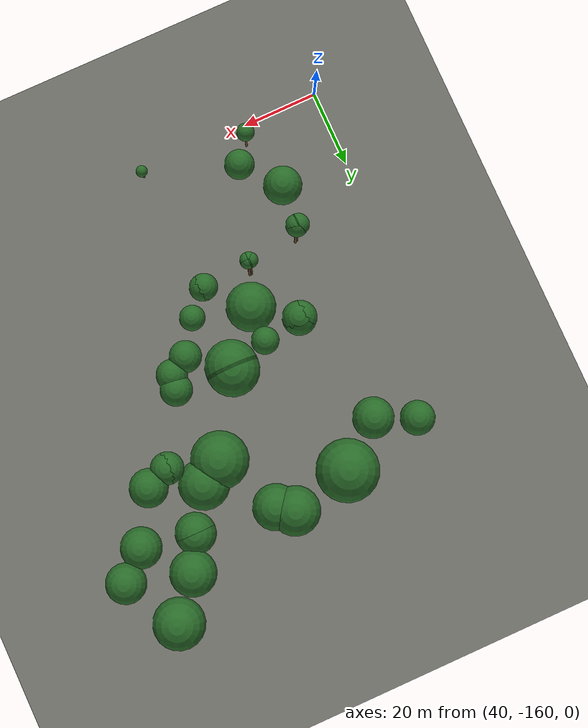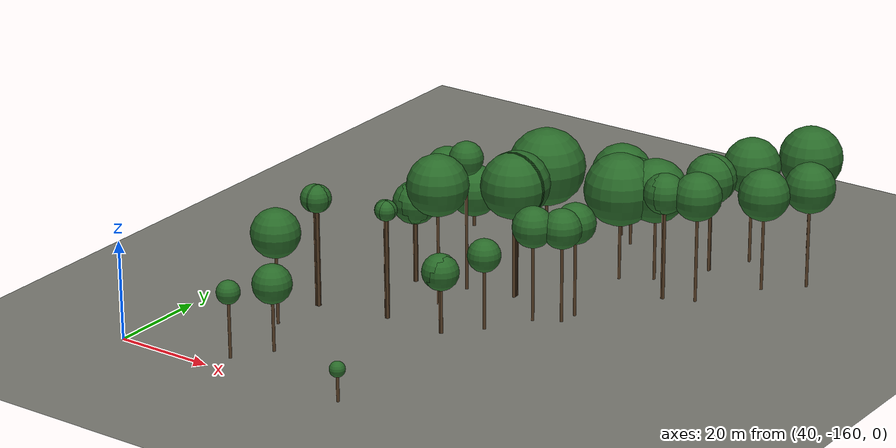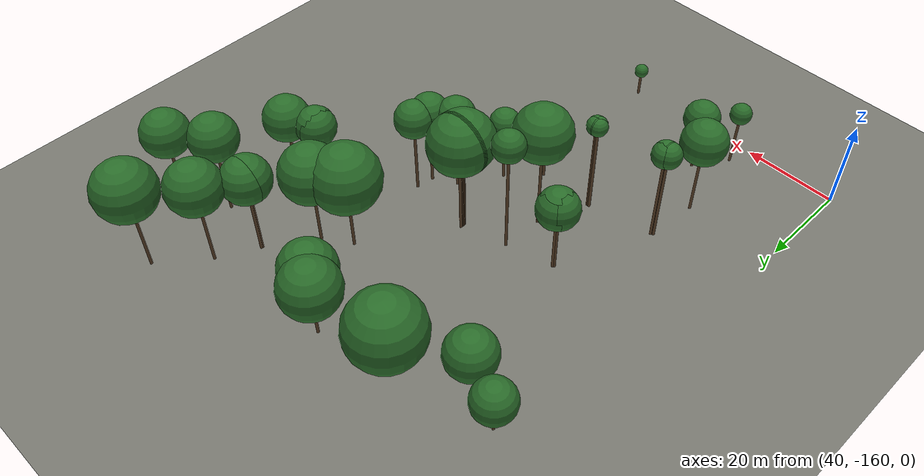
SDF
<sdf version="1.9">
 <world name="uav_arena_bk">
  <model name="ground_plane">
   <static>true</static>
   <link name="link">
    <collision name="collision">
     <geometry><plane><normal>0 0 1</normal><size>1200 1200</size></plane></geometry>
    </collision>
    <visual name="visual">
     <geometry><plane><normal>0 0 1</normal><size>1200 1200</size></plane></geometry>
     <material><ambient>0.35 0.35 0.33 1</ambient><diffuse>0.45 0.45 0.42 1</diffuse></material>
    </visual>
   </link>
  </model>
  <model name="tree_228">
   <static>true</static>
   <pose>125.318 -51.296 0 0 0 0</pose>
   <link name="link">
    <collision name="trunk_collision">
     <pose>0 0 7.155 0 0 0</pose>
     <geometry><cylinder><radius>0.30</radius><length>14.310</length></cylinder></geometry>
    </collision>
    <visual name="trunk_visual">
     <pose>0 0 7.155 0 0 0</pose>
     <geometry><cylinder><radius>0.30</radius><length>14.310</length></cylinder></geometry>
     <material><ambient>0.25 0.18 0.11 1</ambient><diffuse>0.35 0.25 0.15 1</diffuse></material>
    </visual>
    <collision name="canopy_collision">
     <pose>0 0 20.720 0 0 0</pose>
     <geometry><sphere><radius>6.410</radius></sphere></geometry>
    </collision>
    <visual name="canopy_visual">
     <pose>0 0 20.720 0 0 0</pose>
     <geometry><sphere><radius>6.410</radius></sphere></geometry>
     <material><ambient>0.10 0.28 0.10 1</ambient><diffuse>0.16 0.42 0.16 1</diffuse></material>
     <plugin filename="gz-sim-label-system" name="gz::sim::systems::Label"><label>2</label></plugin>
    </visual>
   </link>
  </model>
  <model name="tree_242">
   <static>true</static>
   <pose>117.517 -60.754 0 0 0 0</pose>
   <link name="link">
    <collision name="trunk_collision">
     <pose>0 0 7.265 0 0 0</pose>
     <geometry><cylinder><radius>0.30</radius><length>14.530</length></cylinder></geometry>
    </collision>
    <visual name="trunk_visual">
     <pose>0 0 7.265 0 0 0</pose>
     <geometry><cylinder><radius>0.30</radius><length>14.530</length></cylinder></geometry>
     <material><ambient>0.25 0.18 0.11 1</ambient><diffuse>0.35 0.25 0.15 1</diffuse></material>
    </visual>
    <collision name="canopy_collision">
     <pose>0 0 20.280 0 0 0</pose>
     <geometry><sphere><radius>5.750</radius></sphere></geometry>
    </collision>
    <visual name="canopy_visual">
     <pose>0 0 20.280 0 0 0</pose>
     <geometry><sphere><radius>5.750</radius></sphere></geometry>
     <material><ambient>0.10 0.28 0.10 1</ambient><diffuse>0.16 0.42 0.16 1</diffuse></material>
     <plugin filename="gz-sim-label-system" name="gz::sim::systems::Label"><label>2</label></plugin>
    </visual>
   </link>
  </model>
  <model name="tree_247">
   <static>true</static>
   <pose>89.250 -63.851 0 0 0 0</pose>
   <link name="link">
    <collision name="trunk_collision">
     <pose>0 0 3.500 0 0 0</pose>
     <geometry><cylinder><radius>0.30</radius><length>7.000</length></cylinder></geometry>
    </collision>
    <visual name="trunk_visual">
     <pose>0 0 3.500 0 0 0</pose>
     <geometry><cylinder><radius>0.30</radius><length>7.000</length></cylinder></geometry>
     <material><ambient>0.25 0.18 0.11 1</ambient><diffuse>0.35 0.25 0.15 1</diffuse></material>
    </visual>
    <collision name="canopy_collision">
     <pose>0 0 13.260 0 0 0</pose>
     <geometry><sphere><radius>6.260</radius></sphere></geometry>
    </collision>
    <visual name="canopy_visual">
     <pose>0 0 13.260 0 0 0</pose>
     <geometry><sphere><radius>6.260</radius></sphere></geometry>
     <material><ambient>0.10 0.28 0.10 1</ambient><diffuse>0.16 0.42 0.16 1</diffuse></material>
     <plugin filename="gz-sim-label-system" name="gz::sim::systems::Label"><label>2</label></plugin>
    </visual>
   </link>
  </model>
  <model name="tree_249">
   <static>true</static>
   <pose>132.993 -65.088 0 0 0 0</pose>
   <link name="link">
    <collision name="trunk_collision">
     <pose>0 0 7.835 0 0 0</pose>
     <geometry><cylinder><radius>0.30</radius><length>15.670</length></cylinder></geometry>
    </collision>
    <visual name="trunk_visual">
     <pose>0 0 7.835 0 0 0</pose>
     <geometry><cylinder><radius>0.30</radius><length>15.670</length></cylinder></geometry>
     <material><ambient>0.25 0.18 0.11 1</ambient><diffuse>0.35 0.25 0.15 1</diffuse></material>
    </visual>
    <collision name="canopy_collision">
     <pose>0 0 20.680 0 0 0</pose>
     <geometry><sphere><radius>5.010</radius></sphere></geometry>
    </collision>
    <visual name="canopy_visual">
     <pose>0 0 20.680 0 0 0</pose>
     <geometry><sphere><radius>5.010</radius></sphere></geometry>
     <material><ambient>0.10 0.28 0.10 1</ambient><diffuse>0.16 0.42 0.16 1</diffuse></material>
     <plugin filename="gz-sim-label-system" name="gz::sim::systems::Label"><label>2</label></plugin>
    </visual>
   </link>
  </model>
  <model name="tree_251">
   <static>true</static>
   <pose>93.235 -66.622 0 0 0 0</pose>
   <link name="link">
    <collision name="trunk_collision">
     <pose>0 0 3.460 0 0 0</pose>
     <geometry><cylinder><radius>0.30</radius><length>6.920</length></cylinder></geometry>
    </collision>
    <visual name="trunk_visual">
     <pose>0 0 3.460 0 0 0</pose>
     <geometry><cylinder><radius>0.30</radius><length>6.920</length></cylinder></geometry>
     <material><ambient>0.25 0.18 0.11 1</ambient><diffuse>0.35 0.25 0.15 1</diffuse></material>
    </visual>
    <collision name="canopy_collision">
     <pose>0 0 12.780 0 0 0</pose>
     <geometry><sphere><radius>5.860</radius></sphere></geometry>
    </collision>
    <visual name="canopy_visual">
     <pose>0 0 12.780 0 0 0</pose>
     <geometry><sphere><radius>5.860</radius></sphere></geometry>
     <material><ambient>0.10 0.28 0.10 1</ambient><diffuse>0.16 0.42 0.16 1</diffuse></material>
     <plugin filename="gz-sim-label-system" name="gz::sim::systems::Label"><label>2</label></plugin>
    </visual>
   </link>
  </model>
  <model name="tree_252">
   <static>true</static>
   <pose>73.480 -67.515 0 0 0 0</pose>
   <link name="link">
    <collision name="trunk_collision">
     <pose>0 0 2.265 0 0 0</pose>
     <geometry><cylinder><radius>0.30</radius><length>4.530</length></cylinder></geometry>
    </collision>
    <visual name="trunk_visual">
     <pose>0 0 2.265 0 0 0</pose>
     <geometry><cylinder><radius>0.30</radius><length>4.530</length></cylinder></geometry>
     <material><ambient>0.25 0.18 0.11 1</ambient><diffuse>0.35 0.25 0.15 1</diffuse></material>
    </visual>
    <collision name="canopy_collision">
     <pose>0 0 12.530 0 0 0</pose>
     <geometry><sphere><radius>8.000</radius></sphere></geometry>
    </collision>
    <visual name="canopy_visual">
     <pose>0 0 12.530 0 0 0</pose>
     <geometry><sphere><radius>8.000</radius></sphere></geometry>
     <material><ambient>0.10 0.28 0.10 1</ambient><diffuse>0.16 0.42 0.16 1</diffuse></material>
     <plugin filename="gz-sim-label-system" name="gz::sim::systems::Label"><label>2</label></plugin>
    </visual>
   </link>
  </model>
  <model name="tree_254">
   <static>true</static>
   <pose>113.222 -68.981 0 0 0 0</pose>
   <link name="link">
    <collision name="trunk_collision">
     <pose>0 0 7.195 0 0 0</pose>
     <geometry><cylinder><radius>0.30</radius><length>14.390</length></cylinder></geometry>
    </collision>
    <visual name="trunk_visual">
     <pose>0 0 7.195 0 0 0</pose>
     <geometry><cylinder><radius>0.30</radius><length>14.390</length></cylinder></geometry>
     <material><ambient>0.25 0.18 0.11 1</ambient><diffuse>0.35 0.25 0.15 1</diffuse></material>
    </visual>
    <collision name="canopy_collision">
     <pose>0 0 19.390 0 0 0</pose>
     <geometry><sphere><radius>5.000</radius></sphere></geometry>
    </collision>
    <visual name="canopy_visual">
     <pose>0 0 19.390 0 0 0</pose>
     <geometry><sphere><radius>5.000</radius></sphere></geometry>
     <material><ambient>0.10 0.28 0.10 1</ambient><diffuse>0.16 0.42 0.16 1</diffuse></material>
     <plugin filename="gz-sim-label-system" name="gz::sim::systems::Label"><label>2</label></plugin>
    </visual>
   </link>
  </model>
  <model name="tree_255">
   <static>true</static>
   <pose>113.221 -69.231 0 0 0 0</pose>
   <link name="link">
    <collision name="trunk_collision">
     <pose>0 0 7.195 0 0 0</pose>
     <geometry><cylinder><radius>0.30</radius><length>14.390</length></cylinder></geometry>
    </collision>
    <visual name="trunk_visual">
     <pose>0 0 7.195 0 0 0</pose>
     <geometry><cylinder><radius>0.30</radius><length>14.390</length></cylinder></geometry>
     <material><ambient>0.25 0.18 0.11 1</ambient><diffuse>0.35 0.25 0.15 1</diffuse></material>
    </visual>
    <collision name="canopy_collision">
     <pose>0 0 19.390 0 0 0</pose>
     <geometry><sphere><radius>5.000</radius></sphere></geometry>
    </collision>
    <visual name="canopy_visual">
     <pose>0 0 19.390 0 0 0</pose>
     <geometry><sphere><radius>5.000</radius></sphere></geometry>
     <material><ambient>0.10 0.28 0.10 1</ambient><diffuse>0.16 0.42 0.16 1</diffuse></material>
     <plugin filename="gz-sim-label-system" name="gz::sim::systems::Label"><label>2</label></plugin>
    </visual>
   </link>
  </model>
  <model name="tree_257">
   <static>true</static>
   <pose>126.460 -71.302 0 0 0 0</pose>
   <link name="link">
    <collision name="trunk_collision">
     <pose>0 0 7.320 0 0 0</pose>
     <geometry><cylinder><radius>0.30</radius><length>14.640</length></cylinder></geometry>
    </collision>
    <visual name="trunk_visual">
     <pose>0 0 7.320 0 0 0</pose>
     <geometry><cylinder><radius>0.30</radius><length>14.640</length></cylinder></geometry>
     <material><ambient>0.25 0.18 0.11 1</ambient><diffuse>0.35 0.25 0.15 1</diffuse></material>
    </visual>
    <collision name="canopy_collision">
     <pose>0 0 19.740 0 0 0</pose>
     <geometry><sphere><radius>5.100</radius></sphere></geometry>
    </collision>
    <visual name="canopy_visual">
     <pose>0 0 19.740 0 0 0</pose>
     <geometry><sphere><radius>5.100</radius></sphere></geometry>
     <material><ambient>0.10 0.28 0.10 1</ambient><diffuse>0.16 0.42 0.16 1</diffuse></material>
     <plugin filename="gz-sim-label-system" name="gz::sim::systems::Label"><label>2</label></plugin>
    </visual>
   </link>
  </model>
  <model name="tree_258">
   <static>true</static>
   <pose>51.955 -72.149 0 0 0 0</pose>
   <link name="link">
    <collision name="trunk_collision">
     <pose>0 0 2.265 0 0 0</pose>
     <geometry><cylinder><radius>0.30</radius><length>4.530</length></cylinder></geometry>
    </collision>
    <visual name="trunk_visual">
     <pose>0 0 2.265 0 0 0</pose>
     <geometry><cylinder><radius>0.30</radius><length>4.530</length></cylinder></geometry>
     <material><ambient>0.25 0.18 0.11 1</ambient><diffuse>0.35 0.25 0.15 1</diffuse></material>
    </visual>
    <collision name="canopy_collision">
     <pose>0 0 8.980 0 0 0</pose>
     <geometry><sphere><radius>4.450</radius></sphere></geometry>
    </collision>
    <visual name="canopy_visual">
     <pose>0 0 8.980 0 0 0</pose>
     <geometry><sphere><radius>4.450</radius></sphere></geometry>
     <material><ambient>0.10 0.28 0.10 1</ambient><diffuse>0.16 0.42 0.16 1</diffuse></material>
     <plugin filename="gz-sim-label-system" name="gz::sim::systems::Label"><label>2</label></plugin>
    </visual>
   </link>
  </model>
  <model name="tree_264">
   <static>true</static>
   <pose>61.930 -76.703 0 0 0 0</pose>
   <link name="link">
    <collision name="trunk_collision">
     <pose>0 0 1.220 0 0 0</pose>
     <geometry><cylinder><radius>0.30</radius><length>2.440</length></cylinder></geometry>
    </collision>
    <visual name="trunk_visual">
     <pose>0 0 1.220 0 0 0</pose>
     <geometry><cylinder><radius>0.30</radius><length>2.440</length></cylinder></geometry>
     <material><ambient>0.25 0.18 0.11 1</ambient><diffuse>0.35 0.25 0.15 1</diffuse></material>
    </visual>
    <collision name="canopy_collision">
     <pose>0 0 7.760 0 0 0</pose>
     <geometry><sphere><radius>5.320</radius></sphere></geometry>
    </collision>
    <visual name="canopy_visual">
     <pose>0 0 7.760 0 0 0</pose>
     <geometry><sphere><radius>5.320</radius></sphere></geometry>
     <material><ambient>0.10 0.28 0.10 1</ambient><diffuse>0.16 0.42 0.16 1</diffuse></material>
     <plugin filename="gz-sim-label-system" name="gz::sim::systems::Label"><label>2</label></plugin>
    </visual>
   </link>
  </model>
  <model name="tree_267">
   <static>true</static>
   <pose>106.668 -78.945 0 0 0 0</pose>
   <link name="link">
    <collision name="trunk_collision">
     <pose>0 0 6.165 0 0 0</pose>
     <geometry><cylinder><radius>0.30</radius><length>12.330</length></cylinder></geometry>
    </collision>
    <visual name="trunk_visual">
     <pose>0 0 6.165 0 0 0</pose>
     <geometry><cylinder><radius>0.30</radius><length>12.330</length></cylinder></geometry>
     <material><ambient>0.25 0.18 0.11 1</ambient><diffuse>0.35 0.25 0.15 1</diffuse></material>
    </visual>
    <collision name="canopy_collision">
     <pose>0 0 18.650 0 0 0</pose>
     <geometry><sphere><radius>6.320</radius></sphere></geometry>
    </collision>
    <visual name="canopy_visual">
     <pose>0 0 18.650 0 0 0</pose>
     <geometry><sphere><radius>6.320</radius></sphere></geometry>
     <material><ambient>0.10 0.28 0.10 1</ambient><diffuse>0.16 0.42 0.16 1</diffuse></material>
     <plugin filename="gz-sim-label-system" name="gz::sim::systems::Label"><label>2</label></plugin>
    </visual>
   </link>
  </model>
  <model name="tree_270">
   <static>true</static>
   <pose>100.898 -82.664 0 0 0 0</pose>
   <link name="link">
    <collision name="trunk_collision">
     <pose>0 0 5.815 0 0 0</pose>
     <geometry><cylinder><radius>0.30</radius><length>11.630</length></cylinder></geometry>
    </collision>
    <visual name="trunk_visual">
     <pose>0 0 5.815 0 0 0</pose>
     <geometry><cylinder><radius>0.30</radius><length>11.630</length></cylinder></geometry>
     <material><ambient>0.25 0.18 0.11 1</ambient><diffuse>0.35 0.25 0.15 1</diffuse></material>
    </visual>
    <collision name="canopy_collision">
     <pose>0 0 18.830 0 0 0</pose>
     <geometry><sphere><radius>7.200</radius></sphere></geometry>
    </collision>
    <visual name="canopy_visual">
     <pose>0 0 18.830 0 0 0</pose>
     <geometry><sphere><radius>7.200</radius></sphere></geometry>
     <material><ambient>0.10 0.28 0.10 1</ambient><diffuse>0.16 0.42 0.16 1</diffuse></material>
     <plugin filename="gz-sim-label-system" name="gz::sim::systems::Label"><label>2</label></plugin>
    </visual>
   </link>
  </model>
  <model name="tree_271">
   <static>true</static>
   <pose>118.893 -83.511 0 0 0 0</pose>
   <link name="link">
    <collision name="trunk_collision">
     <pose>0 0 8.475 0 0 0</pose>
     <geometry><cylinder><radius>0.30</radius><length>16.950</length></cylinder></geometry>
    </collision>
    <visual name="trunk_visual">
     <pose>0 0 8.475 0 0 0</pose>
     <geometry><cylinder><radius>0.30</radius><length>16.950</length></cylinder></geometry>
     <material><ambient>0.25 0.18 0.11 1</ambient><diffuse>0.35 0.25 0.15 1</diffuse></material>
    </visual>
    <collision name="canopy_collision">
     <pose>0 0 21.710 0 0 0</pose>
     <geometry><sphere><radius>4.760</radius></sphere></geometry>
    </collision>
    <visual name="canopy_visual">
     <pose>0 0 21.710 0 0 0</pose>
     <geometry><sphere><radius>4.760</radius></sphere></geometry>
     <material><ambient>0.10 0.28 0.10 1</ambient><diffuse>0.16 0.42 0.16 1</diffuse></material>
     <plugin filename="gz-sim-label-system" name="gz::sim::systems::Label"><label>2</label></plugin>
    </visual>
   </link>
  </model>
  <model name="tree_272">
   <static>true</static>
   <pose>112.880 -85.979 0 0 0 0</pose>
   <link name="link">
    <collision name="trunk_collision">
     <pose>0 0 8.890 0 0 0</pose>
     <geometry><cylinder><radius>0.30</radius><length>17.780</length></cylinder></geometry>
    </collision>
    <visual name="trunk_visual">
     <pose>0 0 8.890 0 0 0</pose>
     <geometry><cylinder><radius>0.30</radius><length>17.780</length></cylinder></geometry>
     <material><ambient>0.25 0.18 0.11 1</ambient><diffuse>0.35 0.25 0.15 1</diffuse></material>
    </visual>
    <collision name="canopy_collision">
     <pose>0 0 21.780 0 0 0</pose>
     <geometry><sphere><radius>4.000</radius></sphere></geometry>
    </collision>
    <visual name="canopy_visual">
     <pose>0 0 21.780 0 0 0</pose>
     <geometry><sphere><radius>4.000</radius></sphere></geometry>
     <material><ambient>0.10 0.28 0.10 1</ambient><diffuse>0.16 0.42 0.16 1</diffuse></material>
     <plugin filename="gz-sim-label-system" name="gz::sim::systems::Label"><label>2</label></plugin>
    </visual>
   </link>
  </model>
  <model name="tree_273">
   <static>true</static>
   <pose>113.130 -85.980 0 0 0 0</pose>
   <link name="link">
    <collision name="trunk_collision">
     <pose>0 0 8.920 0 0 0</pose>
     <geometry><cylinder><radius>0.30</radius><length>17.840</length></cylinder></geometry>
    </collision>
    <visual name="trunk_visual">
     <pose>0 0 8.920 0 0 0</pose>
     <geometry><cylinder><radius>0.30</radius><length>17.840</length></cylinder></geometry>
     <material><ambient>0.25 0.18 0.11 1</ambient><diffuse>0.35 0.25 0.15 1</diffuse></material>
    </visual>
    <collision name="canopy_collision">
     <pose>0 0 21.840 0 0 0</pose>
     <geometry><sphere><radius>4.000</radius></sphere></geometry>
    </collision>
    <visual name="canopy_visual">
     <pose>0 0 21.840 0 0 0</pose>
     <geometry><sphere><radius>4.000</radius></sphere></geometry>
     <material><ambient>0.10 0.28 0.10 1</ambient><diffuse>0.16 0.42 0.16 1</diffuse></material>
     <plugin filename="gz-sim-label-system" name="gz::sim::systems::Label"><label>2</label></plugin>
    </visual>
   </link>
  </model>
  <model name="tree_279">
   <static>true</static>
   <pose>89.049 -100.850 0 0 0 0</pose>
   <link name="link">
    <collision name="trunk_collision">
     <pose>0 0 8.355 0 0 0</pose>
     <geometry><cylinder><radius>0.30</radius><length>16.710</length></cylinder></geometry>
    </collision>
    <visual name="trunk_visual">
     <pose>0 0 8.355 0 0 0</pose>
     <geometry><cylinder><radius>0.30</radius><length>16.710</length></cylinder></geometry>
     <material><ambient>0.25 0.18 0.11 1</ambient><diffuse>0.35 0.25 0.15 1</diffuse></material>
    </visual>
    <collision name="canopy_collision">
     <pose>0 0 23.210 0 0 0</pose>
     <geometry><sphere><radius>6.500</radius></sphere></geometry>
    </collision>
    <visual name="canopy_visual">
     <pose>0 0 23.210 0 0 0</pose>
     <geometry><sphere><radius>6.500</radius></sphere></geometry>
     <material><ambient>0.10 0.28 0.10 1</ambient><diffuse>0.16 0.42 0.16 1</diffuse></material>
     <plugin filename="gz-sim-label-system" name="gz::sim::systems::Label"><label>2</label></plugin>
    </visual>
   </link>
  </model>
  <model name="tree_283">
   <static>true</static>
   <pose>89.048 -101.100 0 0 0 0</pose>
   <link name="link">
    <collision name="trunk_collision">
     <pose>0 0 8.355 0 0 0</pose>
     <geometry><cylinder><radius>0.30</radius><length>16.710</length></cylinder></geometry>
    </collision>
    <visual name="trunk_visual">
     <pose>0 0 8.355 0 0 0</pose>
     <geometry><cylinder><radius>0.30</radius><length>16.710</length></cylinder></geometry>
     <material><ambient>0.25 0.18 0.11 1</ambient><diffuse>0.35 0.25 0.15 1</diffuse></material>
    </visual>
    <collision name="canopy_collision">
     <pose>0 0 23.210 0 0 0</pose>
     <geometry><sphere><radius>6.500</radius></sphere></geometry>
    </collision>
    <visual name="canopy_visual">
     <pose>0 0 23.210 0 0 0</pose>
     <geometry><sphere><radius>6.500</radius></sphere></geometry>
     <material><ambient>0.10 0.28 0.10 1</ambient><diffuse>0.16 0.42 0.16 1</diffuse></material>
     <plugin filename="gz-sim-label-system" name="gz::sim::systems::Label"><label>2</label></plugin>
    </visual>
   </link>
  </model>
  <model name="tree_284">
   <static>true</static>
   <pose>89.047 -101.350 0 0 0 0</pose>
   <link name="link">
    <collision name="trunk_collision">
     <pose>0 0 8.355 0 0 0</pose>
     <geometry><cylinder><radius>0.30</radius><length>16.710</length></cylinder></geometry>
    </collision>
    <visual name="trunk_visual">
     <pose>0 0 8.355 0 0 0</pose>
     <geometry><cylinder><radius>0.30</radius><length>16.710</length></cylinder></geometry>
     <material><ambient>0.25 0.18 0.11 1</ambient><diffuse>0.35 0.25 0.15 1</diffuse></material>
    </visual>
    <collision name="canopy_collision">
     <pose>0 0 23.210 0 0 0</pose>
     <geometry><sphere><radius>6.500</radius></sphere></geometry>
    </collision>
    <visual name="canopy_visual">
     <pose>0 0 23.210 0 0 0</pose>
     <geometry><sphere><radius>6.500</radius></sphere></geometry>
     <material><ambient>0.10 0.28 0.10 1</ambient><diffuse>0.16 0.42 0.16 1</diffuse></material>
     <plugin filename="gz-sim-label-system" name="gz::sim::systems::Label"><label>2</label></plugin>
    </visual>
   </link>
  </model>
  <model name="tree_285">
   <static>true</static>
   <pose>89.045 -101.600 0 0 0 0</pose>
   <link name="link">
    <collision name="trunk_collision">
     <pose>0 0 8.355 0 0 0</pose>
     <geometry><cylinder><radius>0.30</radius><length>16.710</length></cylinder></geometry>
    </collision>
    <visual name="trunk_visual">
     <pose>0 0 8.355 0 0 0</pose>
     <geometry><cylinder><radius>0.30</radius><length>16.710</length></cylinder></geometry>
     <material><ambient>0.25 0.18 0.11 1</ambient><diffuse>0.35 0.25 0.15 1</diffuse></material>
    </visual>
    <collision name="canopy_collision">
     <pose>0 0 23.210 0 0 0</pose>
     <geometry><sphere><radius>6.500</radius></sphere></geometry>
    </collision>
    <visual name="canopy_visual">
     <pose>0 0 23.210 0 0 0</pose>
     <geometry><sphere><radius>6.500</radius></sphere></geometry>
     <material><ambient>0.10 0.28 0.10 1</ambient><diffuse>0.16 0.42 0.16 1</diffuse></material>
     <plugin filename="gz-sim-label-system" name="gz::sim::systems::Label"><label>2</label></plugin>
    </visual>
   </link>
  </model>
  <model name="tree_286">
   <static>true</static>
   <pose>89.044 -101.850 0 0 0 0</pose>
   <link name="link">
    <collision name="trunk_collision">
     <pose>0 0 8.355 0 0 0</pose>
     <geometry><cylinder><radius>0.30</radius><length>16.710</length></cylinder></geometry>
    </collision>
    <visual name="trunk_visual">
     <pose>0 0 8.355 0 0 0</pose>
     <geometry><cylinder><radius>0.30</radius><length>16.710</length></cylinder></geometry>
     <material><ambient>0.25 0.18 0.11 1</ambient><diffuse>0.35 0.25 0.15 1</diffuse></material>
    </visual>
    <collision name="canopy_collision">
     <pose>0 0 23.210 0 0 0</pose>
     <geometry><sphere><radius>6.500</radius></sphere></geometry>
    </collision>
    <visual name="canopy_visual">
     <pose>0 0 23.210 0 0 0</pose>
     <geometry><sphere><radius>6.500</radius></sphere></geometry>
     <material><ambient>0.10 0.28 0.10 1</ambient><diffuse>0.16 0.42 0.16 1</diffuse></material>
     <plugin filename="gz-sim-label-system" name="gz::sim::systems::Label"><label>2</label></plugin>
    </visual>
   </link>
  </model>
  <model name="tree_290">
   <static>true</static>
   <pose>103.541 -102.428 0 0 0 0</pose>
   <link name="link">
    <collision name="trunk_collision">
     <pose>0 0 7.490 0 0 0</pose>
     <geometry><cylinder><radius>0.30</radius><length>14.980</length></cylinder></geometry>
    </collision>
    <visual name="trunk_visual">
     <pose>0 0 7.490 0 0 0</pose>
     <geometry><cylinder><radius>0.30</radius><length>14.980</length></cylinder></geometry>
     <material><ambient>0.25 0.18 0.11 1</ambient><diffuse>0.35 0.25 0.15 1</diffuse></material>
    </visual>
    <collision name="canopy_collision">
     <pose>0 0 19.010 0 0 0</pose>
     <geometry><sphere><radius>4.030</radius></sphere></geometry>
    </collision>
    <visual name="canopy_visual">
     <pose>0 0 19.010 0 0 0</pose>
     <geometry><sphere><radius>4.030</radius></sphere></geometry>
     <material><ambient>0.10 0.28 0.10 1</ambient><diffuse>0.16 0.42 0.16 1</diffuse></material>
     <plugin filename="gz-sim-label-system" name="gz::sim::systems::Label"><label>2</label></plugin>
    </visual>
   </link>
  </model>
  <model name="tree_293">
   <static>true</static>
   <pose>79.283 -103.797 0 0 0 0</pose>
   <link name="link">
    <collision name="trunk_collision">
     <pose>0 0 11.940 0 0 0</pose>
     <geometry><cylinder><radius>0.30</radius><length>23.880</length></cylinder></geometry>
    </collision>
    <visual name="trunk_visual">
     <pose>0 0 11.940 0 0 0</pose>
     <geometry><cylinder><radius>0.30</radius><length>23.880</length></cylinder></geometry>
     <material><ambient>0.25 0.18 0.11 1</ambient><diffuse>0.35 0.25 0.15 1</diffuse></material>
    </visual>
    <collision name="canopy_collision">
     <pose>0 0 27.240 0 0 0</pose>
     <geometry><sphere><radius>3.360</radius></sphere></geometry>
    </collision>
    <visual name="canopy_visual">
     <pose>0 0 27.240 0 0 0</pose>
     <geometry><sphere><radius>3.360</radius></sphere></geometry>
     <material><ambient>0.10 0.28 0.10 1</ambient><diffuse>0.16 0.42 0.16 1</diffuse></material>
     <plugin filename="gz-sim-label-system" name="gz::sim::systems::Label"><label>2</label></plugin>
    </visual>
   </link>
  </model>
  <model name="tree_295">
   <static>true</static>
   <pose>103.021 -106.176 0 0 0 0</pose>
   <link name="link">
    <collision name="trunk_collision">
     <pose>0 0 7.580 0 0 0</pose>
     <geometry><cylinder><radius>0.30</radius><length>15.160</length></cylinder></geometry>
    </collision>
    <visual name="trunk_visual">
     <pose>0 0 7.580 0 0 0</pose>
     <geometry><cylinder><radius>0.30</radius><length>15.160</length></cylinder></geometry>
     <material><ambient>0.25 0.18 0.11 1</ambient><diffuse>0.35 0.25 0.15 1</diffuse></material>
    </visual>
    <collision name="canopy_collision">
     <pose>0 0 19.070 0 0 0</pose>
     <geometry><sphere><radius>3.910</radius></sphere></geometry>
    </collision>
    <visual name="canopy_visual">
     <pose>0 0 19.070 0 0 0</pose>
     <geometry><sphere><radius>3.910</radius></sphere></geometry>
     <material><ambient>0.10 0.28 0.10 1</ambient><diffuse>0.16 0.42 0.16 1</diffuse></material>
     <plugin filename="gz-sim-label-system" name="gz::sim::systems::Label"><label>2</label></plugin>
    </visual>
   </link>
  </model>
  <model name="tree_296">
   <static>true</static>
   <pose>69.020 -106.241 0 0 0 0</pose>
   <link name="link">
    <collision name="trunk_collision">
     <pose>0 0 6.160 0 0 0</pose>
     <geometry><cylinder><radius>0.30</radius><length>12.320</length></cylinder></geometry>
    </collision>
    <visual name="trunk_visual">
     <pose>0 0 6.160 0 0 0</pose>
     <geometry><cylinder><radius>0.30</radius><length>12.320</length></cylinder></geometry>
     <material><ambient>0.25 0.18 0.11 1</ambient><diffuse>0.35 0.25 0.15 1</diffuse></material>
    </visual>
    <collision name="canopy_collision">
     <pose>0 0 16.570 0 0 0</pose>
     <geometry><sphere><radius>4.250</radius></sphere></geometry>
    </collision>
    <visual name="canopy_visual">
     <pose>0 0 16.570 0 0 0</pose>
     <geometry><sphere><radius>4.250</radius></sphere></geometry>
     <material><ambient>0.10 0.28 0.10 1</ambient><diffuse>0.16 0.42 0.16 1</diffuse></material>
     <plugin filename="gz-sim-label-system" name="gz::sim::systems::Label"><label>2</label></plugin>
    </visual>
   </link>
  </model>
  <model name="tree_297">
   <static>true</static>
   <pose>68.769 -106.490 0 0 0 0</pose>
   <link name="link">
    <collision name="trunk_collision">
     <pose>0 0 6.180 0 0 0</pose>
     <geometry><cylinder><radius>0.30</radius><length>12.360</length></cylinder></geometry>
    </collision>
    <visual name="trunk_visual">
     <pose>0 0 6.180 0 0 0</pose>
     <geometry><cylinder><radius>0.30</radius><length>12.360</length></cylinder></geometry>
     <material><ambient>0.25 0.18 0.11 1</ambient><diffuse>0.35 0.25 0.15 1</diffuse></material>
    </visual>
    <collision name="canopy_collision">
     <pose>0 0 16.610 0 0 0</pose>
     <geometry><sphere><radius>4.250</radius></sphere></geometry>
    </collision>
    <visual name="canopy_visual">
     <pose>0 0 16.610 0 0 0</pose>
     <geometry><sphere><radius>4.250</radius></sphere></geometry>
     <material><ambient>0.10 0.28 0.10 1</ambient><diffuse>0.16 0.42 0.16 1</diffuse></material>
     <plugin filename="gz-sim-label-system" name="gz::sim::systems::Label"><label>2</label></plugin>
    </visual>
   </link>
  </model>
  <model name="tree_298">
   <static>true</static>
   <pose>69.019 -106.491 0 0 0 0</pose>
   <link name="link">
    <collision name="trunk_collision">
     <pose>0 0 6.230 0 0 0</pose>
     <geometry><cylinder><radius>0.30</radius><length>12.460</length></cylinder></geometry>
    </collision>
    <visual name="trunk_visual">
     <pose>0 0 6.230 0 0 0</pose>
     <geometry><cylinder><radius>0.30</radius><length>12.460</length></cylinder></geometry>
     <material><ambient>0.25 0.18 0.11 1</ambient><diffuse>0.35 0.25 0.15 1</diffuse></material>
    </visual>
    <collision name="canopy_collision">
     <pose>0 0 16.710 0 0 0</pose>
     <geometry><sphere><radius>4.250</radius></sphere></geometry>
    </collision>
    <visual name="canopy_visual">
     <pose>0 0 16.710 0 0 0</pose>
     <geometry><sphere><radius>4.250</radius></sphere></geometry>
     <material><ambient>0.10 0.28 0.10 1</ambient><diffuse>0.16 0.42 0.16 1</diffuse></material>
     <plugin filename="gz-sim-label-system" name="gz::sim::systems::Label"><label>2</label></plugin>
    </visual>
   </link>
  </model>
  <model name="tree_301">
   <static>true</static>
   <pose>98.256 -108.900 0 0 0 0</pose>
   <link name="link">
    <collision name="trunk_collision">
     <pose>0 0 7.600 0 0 0</pose>
     <geometry><cylinder><radius>0.30</radius><length>15.200</length></cylinder></geometry>
    </collision>
    <visual name="trunk_visual">
     <pose>0 0 7.600 0 0 0</pose>
     <geometry><cylinder><radius>0.30</radius><length>15.200</length></cylinder></geometry>
     <material><ambient>0.25 0.18 0.11 1</ambient><diffuse>0.35 0.25 0.15 1</diffuse></material>
    </visual>
    <collision name="canopy_collision">
     <pose>0 0 19.230 0 0 0</pose>
     <geometry><sphere><radius>4.030</radius></sphere></geometry>
    </collision>
    <visual name="canopy_visual">
     <pose>0 0 19.230 0 0 0</pose>
     <geometry><sphere><radius>4.030</radius></sphere></geometry>
     <material><ambient>0.10 0.28 0.10 1</ambient><diffuse>0.16 0.42 0.16 1</diffuse></material>
     <plugin filename="gz-sim-label-system" name="gz::sim::systems::Label"><label>2</label></plugin>
    </visual>
   </link>
  </model>
  <model name="tree_303">
   <static>true</static>
   <pose>78.985 -112.795 0 0 0 0</pose>
   <link name="link">
    <collision name="trunk_collision">
     <pose>0 0 9.260 0 0 0</pose>
     <geometry><cylinder><radius>0.30</radius><length>18.520</length></cylinder></geometry>
    </collision>
    <visual name="trunk_visual">
     <pose>0 0 9.260 0 0 0</pose>
     <geometry><cylinder><radius>0.30</radius><length>18.520</length></cylinder></geometry>
     <material><ambient>0.25 0.18 0.11 1</ambient><diffuse>0.35 0.25 0.15 1</diffuse></material>
    </visual>
    <collision name="canopy_collision">
     <pose>0 0 24.570 0 0 0</pose>
     <geometry><sphere><radius>6.050</radius></sphere></geometry>
    </collision>
    <visual name="canopy_visual">
     <pose>0 0 24.570 0 0 0</pose>
     <geometry><sphere><radius>6.050</radius></sphere></geometry>
     <material><ambient>0.10 0.28 0.10 1</ambient><diffuse>0.16 0.42 0.16 1</diffuse></material>
     <plugin filename="gz-sim-label-system" name="gz::sim::systems::Label"><label>2</label></plugin>
    </visual>
   </link>
  </model>
  <model name="tree_304">
   <static>true</static>
   <pose>92.960 -117.371 0 0 0 0</pose>
   <link name="link">
    <collision name="trunk_collision">
     <pose>0 0 5.930 0 0 0</pose>
     <geometry><cylinder><radius>0.30</radius><length>11.860</length></cylinder></geometry>
    </collision>
    <visual name="trunk_visual">
     <pose>0 0 5.930 0 0 0</pose>
     <geometry><cylinder><radius>0.30</radius><length>11.860</length></cylinder></geometry>
     <material><ambient>0.25 0.18 0.11 1</ambient><diffuse>0.35 0.25 0.15 1</diffuse></material>
    </visual>
    <collision name="canopy_collision">
     <pose>0 0 15.110 0 0 0</pose>
     <geometry><sphere><radius>3.250</radius></sphere></geometry>
    </collision>
    <visual name="canopy_visual">
     <pose>0 0 15.110 0 0 0</pose>
     <geometry><sphere><radius>3.250</radius></sphere></geometry>
     <material><ambient>0.10 0.28 0.10 1</ambient><diffuse>0.16 0.42 0.16 1</diffuse></material>
     <plugin filename="gz-sim-label-system" name="gz::sim::systems::Label"><label>2</label></plugin>
    </visual>
   </link>
  </model>
  <model name="tree_309">
   <static>true</static>
   <pose>74.426 -123.521 0 0 0 0</pose>
   <link name="link">
    <collision name="trunk_collision">
     <pose>0 0 10.045 0 0 0</pose>
     <geometry><cylinder><radius>0.30</radius><length>20.090</length></cylinder></geometry>
    </collision>
    <visual name="trunk_visual">
     <pose>0 0 10.045 0 0 0</pose>
     <geometry><cylinder><radius>0.30</radius><length>20.090</length></cylinder></geometry>
     <material><ambient>0.25 0.18 0.11 1</ambient><diffuse>0.35 0.25 0.15 1</diffuse></material>
    </visual>
    <collision name="canopy_collision">
     <pose>0 0 22.090 0 0 0</pose>
     <geometry><sphere><radius>2.000</radius></sphere></geometry>
    </collision>
    <visual name="canopy_visual">
     <pose>0 0 22.090 0 0 0</pose>
     <geometry><sphere><radius>2.000</radius></sphere></geometry>
     <material><ambient>0.10 0.28 0.10 1</ambient><diffuse>0.16 0.42 0.16 1</diffuse></material>
     <plugin filename="gz-sim-label-system" name="gz::sim::systems::Label"><label>2</label></plugin>
    </visual>
   </link>
  </model>
  <model name="tree_310">
   <static>true</static>
   <pose>74.676 -123.522 0 0 0 0</pose>
   <link name="link">
    <collision name="trunk_collision">
     <pose>0 0 10.045 0 0 0</pose>
     <geometry><cylinder><radius>0.30</radius><length>20.090</length></cylinder></geometry>
    </collision>
    <visual name="trunk_visual">
     <pose>0 0 10.045 0 0 0</pose>
     <geometry><cylinder><radius>0.30</radius><length>20.090</length></cylinder></geometry>
     <material><ambient>0.25 0.18 0.11 1</ambient><diffuse>0.35 0.25 0.15 1</diffuse></material>
    </visual>
    <collision name="canopy_collision">
     <pose>0 0 22.090 0 0 0</pose>
     <geometry><sphere><radius>2.000</radius></sphere></geometry>
    </collision>
    <visual name="canopy_visual">
     <pose>0 0 22.090 0 0 0</pose>
     <geometry><sphere><radius>2.000</radius></sphere></geometry>
     <material><ambient>0.10 0.28 0.10 1</ambient><diffuse>0.16 0.42 0.16 1</diffuse></material>
     <plugin filename="gz-sim-label-system" name="gz::sim::systems::Label"><label>2</label></plugin>
    </visual>
   </link>
  </model>
  <model name="tree_311">
   <static>true</static>
   <pose>74.926 -123.523 0 0 0 0</pose>
   <link name="link">
    <collision name="trunk_collision">
     <pose>0 0 10.040 0 0 0</pose>
     <geometry><cylinder><radius>0.30</radius><length>20.080</length></cylinder></geometry>
    </collision>
    <visual name="trunk_visual">
     <pose>0 0 10.040 0 0 0</pose>
     <geometry><cylinder><radius>0.30</radius><length>20.080</length></cylinder></geometry>
     <material><ambient>0.25 0.18 0.11 1</ambient><diffuse>0.35 0.25 0.15 1</diffuse></material>
    </visual>
    <collision name="canopy_collision">
     <pose>0 0 22.080 0 0 0</pose>
     <geometry><sphere><radius>2.000</radius></sphere></geometry>
    </collision>
    <visual name="canopy_visual">
     <pose>0 0 22.080 0 0 0</pose>
     <geometry><sphere><radius>2.000</radius></sphere></geometry>
     <material><ambient>0.10 0.28 0.10 1</ambient><diffuse>0.16 0.42 0.16 1</diffuse></material>
     <plugin filename="gz-sim-label-system" name="gz::sim::systems::Label"><label>2</label></plugin>
    </visual>
   </link>
  </model>
  <model name="tree_312">
   <static>true</static>
   <pose>87.176 -123.590 0 0 0 0</pose>
   <link name="link">
    <collision name="trunk_collision">
     <pose>0 0 4.535 0 0 0</pose>
     <geometry><cylinder><radius>0.30</radius><length>9.070</length></cylinder></geometry>
    </collision>
    <visual name="trunk_visual">
     <pose>0 0 4.535 0 0 0</pose>
     <geometry><cylinder><radius>0.30</radius><length>9.070</length></cylinder></geometry>
     <material><ambient>0.25 0.18 0.11 1</ambient><diffuse>0.35 0.25 0.15 1</diffuse></material>
    </visual>
    <collision name="canopy_collision">
     <pose>0 0 12.580 0 0 0</pose>
     <geometry><sphere><radius>3.510</radius></sphere></geometry>
    </collision>
    <visual name="canopy_visual">
     <pose>0 0 12.580 0 0 0</pose>
     <geometry><sphere><radius>3.510</radius></sphere></geometry>
     <material><ambient>0.10 0.28 0.10 1</ambient><diffuse>0.16 0.42 0.16 1</diffuse></material>
     <plugin filename="gz-sim-label-system" name="gz::sim::systems::Label"><label>2</label></plugin>
    </visual>
   </link>
  </model>
  <model name="tree_313">
   <static>true</static>
   <pose>87.426 -123.591 0 0 0 0</pose>
   <link name="link">
    <collision name="trunk_collision">
     <pose>0 0 4.480 0 0 0</pose>
     <geometry><cylinder><radius>0.30</radius><length>8.960</length></cylinder></geometry>
    </collision>
    <visual name="trunk_visual">
     <pose>0 0 4.480 0 0 0</pose>
     <geometry><cylinder><radius>0.30</radius><length>8.960</length></cylinder></geometry>
     <material><ambient>0.25 0.18 0.11 1</ambient><diffuse>0.35 0.25 0.15 1</diffuse></material>
    </visual>
    <collision name="canopy_collision">
     <pose>0 0 12.470 0 0 0</pose>
     <geometry><sphere><radius>3.510</radius></sphere></geometry>
    </collision>
    <visual name="canopy_visual">
     <pose>0 0 12.470 0 0 0</pose>
     <geometry><sphere><radius>3.510</radius></sphere></geometry>
     <material><ambient>0.10 0.28 0.10 1</ambient><diffuse>0.16 0.42 0.16 1</diffuse></material>
     <plugin filename="gz-sim-label-system" name="gz::sim::systems::Label"><label>2</label></plugin>
    </visual>
   </link>
  </model>
  <model name="tree_314">
   <static>true</static>
   <pose>74.675 -123.772 0 0 0 0</pose>
   <link name="link">
    <collision name="trunk_collision">
     <pose>0 0 10.045 0 0 0</pose>
     <geometry><cylinder><radius>0.30</radius><length>20.090</length></cylinder></geometry>
    </collision>
    <visual name="trunk_visual">
     <pose>0 0 10.045 0 0 0</pose>
     <geometry><cylinder><radius>0.30</radius><length>20.090</length></cylinder></geometry>
     <material><ambient>0.25 0.18 0.11 1</ambient><diffuse>0.35 0.25 0.15 1</diffuse></material>
    </visual>
    <collision name="canopy_collision">
     <pose>0 0 22.090 0 0 0</pose>
     <geometry><sphere><radius>2.000</radius></sphere></geometry>
    </collision>
    <visual name="canopy_visual">
     <pose>0 0 22.090 0 0 0</pose>
     <geometry><sphere><radius>2.000</radius></sphere></geometry>
     <material><ambient>0.10 0.28 0.10 1</ambient><diffuse>0.16 0.42 0.16 1</diffuse></material>
     <plugin filename="gz-sim-label-system" name="gz::sim::systems::Label"><label>2</label></plugin>
    </visual>
   </link>
  </model>
  <model name="tree_315">
   <static>true</static>
   <pose>74.925 -123.773 0 0 0 0</pose>
   <link name="link">
    <collision name="trunk_collision">
     <pose>0 0 10.040 0 0 0</pose>
     <geometry><cylinder><radius>0.30</radius><length>20.080</length></cylinder></geometry>
    </collision>
    <visual name="trunk_visual">
     <pose>0 0 10.040 0 0 0</pose>
     <geometry><cylinder><radius>0.30</radius><length>20.080</length></cylinder></geometry>
     <material><ambient>0.25 0.18 0.11 1</ambient><diffuse>0.35 0.25 0.15 1</diffuse></material>
    </visual>
    <collision name="canopy_collision">
     <pose>0 0 22.080 0 0 0</pose>
     <geometry><sphere><radius>2.000</radius></sphere></geometry>
    </collision>
    <visual name="canopy_visual">
     <pose>0 0 22.080 0 0 0</pose>
     <geometry><sphere><radius>2.000</radius></sphere></geometry>
     <material><ambient>0.10 0.28 0.10 1</ambient><diffuse>0.16 0.42 0.16 1</diffuse></material>
     <plugin filename="gz-sim-label-system" name="gz::sim::systems::Label"><label>2</label></plugin>
    </visual>
   </link>
  </model>
  <model name="tree_318">
   <static>true</static>
   <pose>60.661 -126.446 0 0 0 0</pose>
   <link name="link">
    <collision name="trunk_collision">
     <pose>0 0 9.710 0 0 0</pose>
     <geometry><cylinder><radius>0.30</radius><length>19.420</length></cylinder></geometry>
    </collision>
    <visual name="trunk_visual">
     <pose>0 0 9.710 0 0 0</pose>
     <geometry><cylinder><radius>0.30</radius><length>19.420</length></cylinder></geometry>
     <material><ambient>0.25 0.18 0.11 1</ambient><diffuse>0.35 0.25 0.15 1</diffuse></material>
    </visual>
    <collision name="canopy_collision">
     <pose>0 0 22.170 0 0 0</pose>
     <geometry><sphere><radius>2.750</radius></sphere></geometry>
    </collision>
    <visual name="canopy_visual">
     <pose>0 0 22.170 0 0 0</pose>
     <geometry><sphere><radius>2.750</radius></sphere></geometry>
     <material><ambient>0.10 0.28 0.10 1</ambient><diffuse>0.16 0.42 0.16 1</diffuse></material>
     <plugin filename="gz-sim-label-system" name="gz::sim::systems::Label"><label>2</label></plugin>
    </visual>
   </link>
  </model>
  <model name="tree_320">
   <static>true</static>
   <pose>60.159 -126.693 0 0 0 0</pose>
   <link name="link">
    <collision name="trunk_collision">
     <pose>0 0 9.730 0 0 0</pose>
     <geometry><cylinder><radius>0.30</radius><length>19.460</length></cylinder></geometry>
    </collision>
    <visual name="trunk_visual">
     <pose>0 0 9.730 0 0 0</pose>
     <geometry><cylinder><radius>0.30</radius><length>19.460</length></cylinder></geometry>
     <material><ambient>0.25 0.18 0.11 1</ambient><diffuse>0.35 0.25 0.15 1</diffuse></material>
    </visual>
    <collision name="canopy_collision">
     <pose>0 0 22.210 0 0 0</pose>
     <geometry><sphere><radius>2.750</radius></sphere></geometry>
    </collision>
    <visual name="canopy_visual">
     <pose>0 0 22.210 0 0 0</pose>
     <geometry><sphere><radius>2.750</radius></sphere></geometry>
     <material><ambient>0.10 0.28 0.10 1</ambient><diffuse>0.16 0.42 0.16 1</diffuse></material>
     <plugin filename="gz-sim-label-system" name="gz::sim::systems::Label"><label>2</label></plugin>
    </visual>
   </link>
  </model>
  <model name="tree_321">
   <static>true</static>
   <pose>60.409 -126.695 0 0 0 0</pose>
   <link name="link">
    <collision name="trunk_collision">
     <pose>0 0 9.730 0 0 0</pose>
     <geometry><cylinder><radius>0.30</radius><length>19.460</length></cylinder></geometry>
    </collision>
    <visual name="trunk_visual">
     <pose>0 0 9.730 0 0 0</pose>
     <geometry><cylinder><radius>0.30</radius><length>19.460</length></cylinder></geometry>
     <material><ambient>0.25 0.18 0.11 1</ambient><diffuse>0.35 0.25 0.15 1</diffuse></material>
    </visual>
    <collision name="canopy_collision">
     <pose>0 0 22.210 0 0 0</pose>
     <geometry><sphere><radius>2.750</radius></sphere></geometry>
    </collision>
    <visual name="canopy_visual">
     <pose>0 0 22.210 0 0 0</pose>
     <geometry><sphere><radius>2.750</radius></sphere></geometry>
     <material><ambient>0.10 0.28 0.10 1</ambient><diffuse>0.16 0.42 0.16 1</diffuse></material>
     <plugin filename="gz-sim-label-system" name="gz::sim::systems::Label"><label>2</label></plugin>
    </visual>
   </link>
  </model>
  <model name="tree_322">
   <static>true</static>
   <pose>60.659 -126.696 0 0 0 0</pose>
   <link name="link">
    <collision name="trunk_collision">
     <pose>0 0 9.730 0 0 0</pose>
     <geometry><cylinder><radius>0.30</radius><length>19.460</length></cylinder></geometry>
    </collision>
    <visual name="trunk_visual">
     <pose>0 0 9.730 0 0 0</pose>
     <geometry><cylinder><radius>0.30</radius><length>19.460</length></cylinder></geometry>
     <material><ambient>0.25 0.18 0.11 1</ambient><diffuse>0.35 0.25 0.15 1</diffuse></material>
    </visual>
    <collision name="canopy_collision">
     <pose>0 0 22.210 0 0 0</pose>
     <geometry><sphere><radius>2.750</radius></sphere></geometry>
    </collision>
    <visual name="canopy_visual">
     <pose>0 0 22.210 0 0 0</pose>
     <geometry><sphere><radius>2.750</radius></sphere></geometry>
     <material><ambient>0.10 0.28 0.10 1</ambient><diffuse>0.16 0.42 0.16 1</diffuse></material>
     <plugin filename="gz-sim-label-system" name="gz::sim::systems::Label"><label>2</label></plugin>
    </visual>
   </link>
  </model>
  <model name="tree_334">
   <static>true</static>
   <pose>59.350 -137.689 0 0 0 0</pose>
   <link name="link">
    <collision name="trunk_collision">
     <pose>0 0 6.885 0 0 0</pose>
     <geometry><cylinder><radius>0.30</radius><length>13.770</length></cylinder></geometry>
    </collision>
    <visual name="trunk_visual">
     <pose>0 0 6.885 0 0 0</pose>
     <geometry><cylinder><radius>0.30</radius><length>13.770</length></cylinder></geometry>
     <material><ambient>0.25 0.18 0.11 1</ambient><diffuse>0.35 0.25 0.15 1</diffuse></material>
    </visual>
    <collision name="canopy_collision">
     <pose>0 0 18.600 0 0 0</pose>
     <geometry><sphere><radius>4.830</radius></sphere></geometry>
    </collision>
    <visual name="canopy_visual">
     <pose>0 0 18.600 0 0 0</pose>
     <geometry><sphere><radius>4.830</radius></sphere></geometry>
     <material><ambient>0.10 0.28 0.10 1</ambient><diffuse>0.16 0.42 0.16 1</diffuse></material>
     <plugin filename="gz-sim-label-system" name="gz::sim::systems::Label"><label>2</label></plugin>
    </visual>
   </link>
  </model>
  <model name="tree_354">
   <static>true</static>
   <pose>66.544 -147.978 0 0 0 0</pose>
   <link name="link">
    <collision name="trunk_collision">
     <pose>0 0 4.925 0 0 0</pose>
     <geometry><cylinder><radius>0.30</radius><length>9.850</length></cylinder></geometry>
    </collision>
    <visual name="trunk_visual">
     <pose>0 0 4.925 0 0 0</pose>
     <geometry><cylinder><radius>0.30</radius><length>9.850</length></cylinder></geometry>
     <material><ambient>0.25 0.18 0.11 1</ambient><diffuse>0.35 0.25 0.15 1</diffuse></material>
    </visual>
    <collision name="canopy_collision">
     <pose>0 0 13.670 0 0 0</pose>
     <geometry><sphere><radius>3.820</radius></sphere></geometry>
    </collision>
    <visual name="canopy_visual">
     <pose>0 0 13.670 0 0 0</pose>
     <geometry><sphere><radius>3.820</radius></sphere></geometry>
     <material><ambient>0.10 0.28 0.10 1</ambient><diffuse>0.16 0.42 0.16 1</diffuse></material>
     <plugin filename="gz-sim-label-system" name="gz::sim::systems::Label"><label>2</label></plugin>
    </visual>
   </link>
  </model>
  <model name="tree_363">
   <static>true</static>
   <pose>61.756 -154.952 0 0 0 0</pose>
   <link name="link">
    <collision name="trunk_collision">
     <pose>0 0 5.495 0 0 0</pose>
     <geometry><cylinder><radius>0.30</radius><length>10.990</length></cylinder></geometry>
    </collision>
    <visual name="trunk_visual">
     <pose>0 0 5.495 0 0 0</pose>
     <geometry><cylinder><radius>0.30</radius><length>10.990</length></cylinder></geometry>
     <material><ambient>0.25 0.18 0.11 1</ambient><diffuse>0.35 0.25 0.15 1</diffuse></material>
    </visual>
    <collision name="canopy_collision">
     <pose>0 0 13.290 0 0 0</pose>
     <geometry><sphere><radius>2.300</radius></sphere></geometry>
    </collision>
    <visual name="canopy_visual">
     <pose>0 0 13.290 0 0 0</pose>
     <geometry><sphere><radius>2.300</radius></sphere></geometry>
     <material><ambient>0.10 0.28 0.10 1</ambient><diffuse>0.16 0.42 0.16 1</diffuse></material>
     <plugin filename="gz-sim-label-system" name="gz::sim::systems::Label"><label>2</label></plugin>
    </visual>
   </link>
  </model>
  <model name="tree_368">
   <static>true</static>
   <pose>89.488 -158.353 0 0 0 0</pose>
   <link name="link">
    <collision name="trunk_collision">
     <pose>0 0 2.440 0 0 0</pose>
     <geometry><cylinder><radius>0.30</radius><length>4.880</length></cylinder></geometry>
    </collision>
    <visual name="trunk_visual">
     <pose>0 0 2.440 0 0 0</pose>
     <geometry><cylinder><radius>0.30</radius><length>4.880</length></cylinder></geometry>
     <material><ambient>0.25 0.18 0.11 1</ambient><diffuse>0.35 0.25 0.15 1</diffuse></material>
    </visual>
    <collision name="canopy_collision">
     <pose>0 0 6.400 0 0 0</pose>
     <geometry><sphere><radius>1.520</radius></sphere></geometry>
    </collision>
    <visual name="canopy_visual">
     <pose>0 0 6.400 0 0 0</pose>
     <geometry><sphere><radius>1.520</radius></sphere></geometry>
     <material><ambient>0.10 0.28 0.10 1</ambient><diffuse>0.16 0.42 0.16 1</diffuse></material>
     <plugin filename="gz-sim-label-system" name="gz::sim::systems::Label"><label>2</label></plugin>
    </visual>
   </link>
  </model>
 </world>
</sdf>
